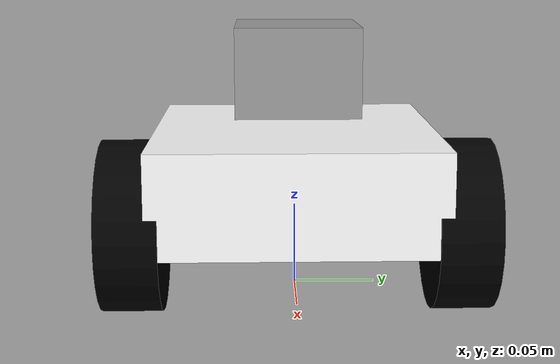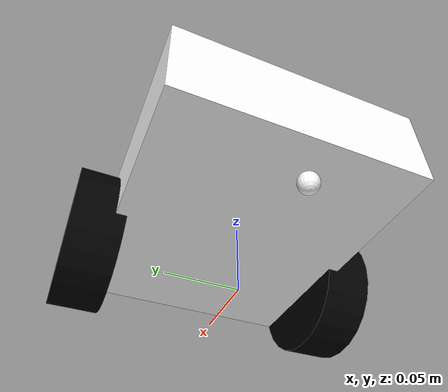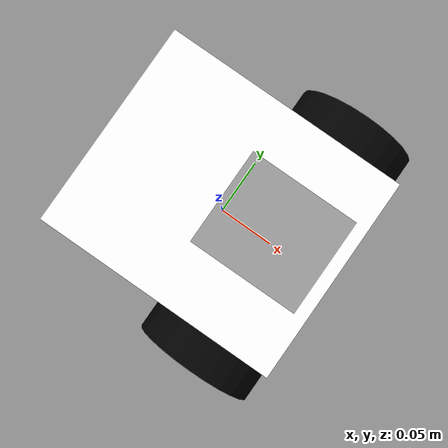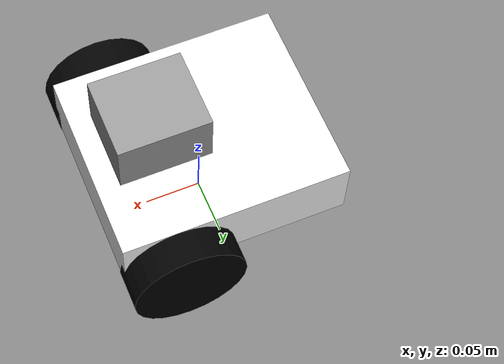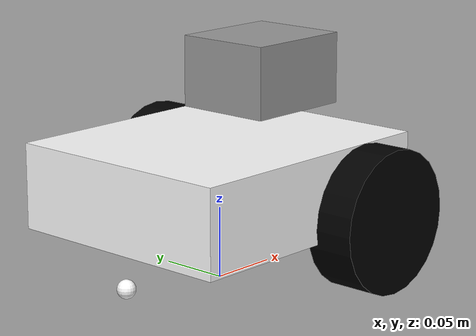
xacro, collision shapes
<?xml version="1.0"?>
<!-- Entry point for the puzzlebot URDF -->
<robot name="puzzlebot" xmlns:xacro="http://www.ros.org/wiki/xacro">
  <xacro:arg name="prefix" default="" />

  <xacro:include filename="$(find puzzlebot_description)/urdf/sensors/parameters_jetson_lidar_ed.xacro"/>
  <xacro:include filename="$(find puzzlebot_description)/urdf/base/puzzlebot_base.urdf.xacro"/>

  <xacro:include filename="$(find puzzlebot_description)/urdf/sensors/macros.xacro"/>

  <xacro:include filename="$(find puzzlebot_description)/urdf/control/puzzlebot_control.xacro"/>
  <xacro:puzzlebot_control prefix="$(arg prefix)"/> <!-- macro -->

  <xacro:include filename="$(find puzzlebot_description)/urdf/sensors/lidar.xacro"/>
  <xacro:rpi_lidar_sensor
    prefix="$(arg prefix)"
    mesh_file="${mesh_puzzlebot_lidar}"/> <!-- macro -->

</robot>

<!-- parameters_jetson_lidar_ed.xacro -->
<robot xmlns:xacro="http://www.ros.org/wiki/xacro">

    <!--General parameters-->
    <xacro:property name="PI" value="3.1415926535897931"/>

    <!--Puzzlebot parameters-->
        <!--General parameters-->
            <xacro:property name="wheel_base_distance" value="0.19"/>

    <!--Chassis-->
        <!--Chassis Inertial/Collision parameters-->
            <xacro:property name="chassis_mass" value="0.351"/>
            <xacro:property name="chassis_length" value="0.2"/>
            <xacro:property name="chassis_width" value="0.16"/>
            <xacro:property name="chassis_height" value="0.0503"/>

            <xacro:property name="chassis_inertia_pos_x" value="0.00"/>
            <xacro:property name="chassis_inertia_pos_y" value="0.0"/>
            <xacro:property name="chassis_inertia_pos_z" value="0.00"/>
            <xacro:property name="chassis_inertia_pos_r" value="0.00"/>
            <xacro:property name="chassis_inertia_pos_p" value="0.0"/>
            <xacro:property name="chassis_inertia_pos_w" value="0.0"/>

            <xacro:property name="chassis_collision_pos_x" value="0.0"/>
            <xacro:property name="chassis_collision_pos_y" value="0.0"/>
            <xacro:property name="chassis_collision_pos_z" value="0.0"/>
            <xacro:property name="chassis_collision_pos_r" value="0.0"/>
            <xacro:property name="chassis_collision_pos_p" value="0.0"/>
            <xacro:property name="chassis_collision_pos_w" value="0.0"/>

        <!--Chassis Visual parameters-->
            <xacro:property name="chassis_mesh_pos_x" value="0.0"/>
            <xacro:property name="chassis_mesh_pos_y" value="0.0"/>
            <xacro:property name="chassis_mesh_pos_z" value="0.0"/>
            <xacro:property name="chassis_mesh_pos_r" value="0.0"/>
            <xacro:property name="chassis_mesh_pos_p" value="0.0"/>
            <xacro:property name="chassis_mesh_pos_w" value="0.0"/>

        <!--Chassis Joint parameters-->
            <xacro:property name="chassis_pos_x" value="0.0"/>
            <xacro:property name="chassis_pos_y" value="0.0"/>
            <xacro:property name="chassis_pos_z" value="0.05"/>
            <xacro:property name="chassis_pos_r" value="0.0"/>
            <xacro:property name="chassis_pos_p" value="0.0"/>
            <xacro:property name="chassis_pos_w" value="0.0"/>

    <!--Caster Holder-->
        <!--Caster Holder Inertial/Collision parameters-->
            <xacro:property name="casterholder_mass" value="0.007"/>
            <xacro:property name="casterholder_length" value="0.0175"/>
            <xacro:property name="casterholder_width" value="0.023"/>
            <xacro:property name="casterholder_height" value="0.011150"/>

            <xacro:property name="casterholder_inertia_pos_x" value="0.0"/>
            <xacro:property name="casterholder_inertia_pos_y" value="0.0"/>
            <xacro:property name="casterholder_inertia_pos_z" value="0.0"/>
            <xacro:property name="casterholder_inertia_pos_r" value="0.0"/>
            <xacro:property name="casterholder_inertia_pos_p" value="0.0"/>
            <xacro:property name="casterholder_inertia_pos_w" value="0.0"/>

            <xacro:property name="casterholder_collision_pos_x" value="0.0"/>
            <xacro:property name="casterholder_collision_pos_y" value="0.0"/>
            <xacro:property name="casterholder_collision_pos_z" value="0.0"/>
            <xacro:property name="casterholder_collision_pos_r" value="0.0"/>
            <xacro:property name="casterholder_collision_pos_p" value="0.0"/>
            <xacro:property name="casterholder_collision_pos_w" value="0.0"/>

        <!--Caster Holder Visual parameters-->
            <xacro:property name="casterholder_mesh_pos_x" value="0.0"/>
            <xacro:property name="casterholder_mesh_pos_y" value="0.0"/>
            <xacro:property name="casterholder_mesh_pos_z" value="-0.012"/>
            <xacro:property name="casterholder_mesh_pos_r" value="0.0"/>
            <xacro:property name="casterholder_mesh_pos_p" value="0.0"/>
            <xacro:property name="casterholder_mesh_pos_w" value="0.0"/>

        <!--Caster Holder Joint parameters-->
            <xacro:property name="casterholder_pos_x" value="-0.095"/>
            <xacro:property name="casterholder_pos_y" value="0.0"/>
            <xacro:property name="casterholder_pos_z" value="-0.030725"/>
            <xacro:property name="casterholder_pos_r" value="0.0"/>
            <xacro:property name="casterholder_pos_p" value="0.0"/>
            <xacro:property name="casterholder_pos_w" value="0.0"/>

    <!--Caster Ball-->
        <!--Caster Ball Inertial/Collision parameters-->
            <xacro:property name="casterball_mass" value="0.009"/>
            <xacro:property name="casterball_radius" value="0.0065"/>

            <xacro:property name="casterball_inertia_pos_x" value="0.0"/>
            <xacro:property name="casterball_inertia_pos_y" value="0.0"/>
            <xacro:property name="casterball_inertia_pos_z" value="0.0"/>
            <xacro:property name="casterball_inertia_pos_r" value="0.0"/>
            <xacro:property name="casterball_inertia_pos_p" value="0.0"/>
            <xacro:property name="casterball_inertia_pos_w" value="0.0"/>

            <xacro:property name="casterball_collision_pos_x" value="0.0"/>
            <xacro:property name="casterball_collision_pos_y" value="0.0"/>
            <xacro:property name="casterball_collision_pos_z" value="0.0"/>
            <xacro:property name="casterball_collision_pos_r" value="0.0"/>
            <xacro:property name="casterball_collision_pos_p" value="0.0"/>
            <xacro:property name="casterball_collision_pos_w" value="0.0"/>

        <!--Caster Ball Visual parameters-->
            <xacro:property name="casterball_mesh_pos_x" value="0.0"/>
            <xacro:property name="casterball_mesh_pos_y" value="0.0"/>
            <xacro:property name="casterball_mesh_pos_z" value="0.0"/>
            <xacro:property name="casterball_mesh_pos_r" value="0.0"/>
            <xacro:property name="casterball_mesh_pos_p" value="0.0"/>
            <xacro:property name="casterball_mesh_pos_w" value="0.0"/>

        <!--Caster Ball Joint parameters-->
            <xacro:property name="casterball_pos_x" value="0.0"/>
            <xacro:property name="casterball_pos_y" value="0.0"/>
            <xacro:property name="casterball_pos_z" value="-0.012538"/>
            <xacro:property name="casterball_pos_r" value="0.0"/>
            <xacro:property name="casterball_pos_p" value="0.0"/>
            <xacro:property name="casterball_pos_w" value="0.0"/>

    <!--Wheel-->
        <!--Wheel Inertial/Collision parameters-->
            <xacro:property name="wheel_mass" value="0.027"/>
            <xacro:property name="wheel_height" value="0.012"/>
            <xacro:property name="wheel_radius" value="0.05"/>

            <xacro:property name="wheel_inertia_pos_x" value="0.0"/>
            <xacro:property name="wheel_inertia_pos_y" value="0.0"/>
            <xacro:property name="wheel_inertia_pos_z" value="0.0"/>
            <xacro:property name="wheel_inertia_pos_r" value="${PI/2}"/>
            <xacro:property name="wheel_inertia_pos_p" value="0.0"/>
            <xacro:property name="wheel_inertia_pos_w" value="0.0"/>

            <xacro:property name="wheel_collision_pos_x" value="0.0"/>
            <xacro:property name="wheel_collision_pos_y" value="0.0"/>
            <xacro:property name="wheel_collision_pos_z" value="0.0"/>
            <xacro:property name="wheel_collision_pos_r" value="${PI/2}"/>
            <xacro:property name="wheel_collision_pos_p" value="0.0"/>
            <xacro:property name="wheel_collision_pos_w" value="0.0"/>

        <!--Wheel Visual parameters-->
            <xacro:property name="wheel_mesh_pos_x" value="0.0"/>
            <xacro:property name="wheel_mesh_pos_y" value="0.0"/>
            <xacro:property name="wheel_mesh_pos_z" value="0.0"/>
            <xacro:property name="wheel_mesh_pos_r" value="${PI/2}"/>
            <xacro:property name="wheel_mesh_pos_p" value="0.0"/>
            <xacro:property name="wheel_mesh_pos_w" value="0.0"/>

        <!--Wheel Joint parameters-->
            <xacro:property name="wheel_pos_x" value="0.052"/>
            <xacro:property name="wheel_pos_y" value="${wheel_base_distance/2}"/>
            <xacro:property name="wheel_pos_z" value="0.0"/>
            <xacro:property name="wheel_pos_r" value="0.0"/>
            <xacro:property name="wheel_pos_p" value="0.0"/>
            <xacro:property name="wheel_pos_w" value="0.0"/>

    <!--NVIDIA Jetson-->
        <!--Jetson Inertial/Collision parameters-->
            <xacro:property name="jetson_mass" value="0.131"/>
            <xacro:property name="jetson_length" value="0.079"/>
            <xacro:property name="jetson_width" value="0.1"/>
            <xacro:property name="jetson_height" value="0.028271"/>
            <xacro:property name="jetson_offset" value="0.01"/>

            <xacro:property name="jetson_inertia_pos_x" value="0.0075"/>
            <xacro:property name="jetson_inertia_pos_y" value="0.00175"/>
            <xacro:property name="jetson_inertia_pos_z" value="${jetson_offset/2}"/>
            <xacro:property name="jetson_inertia_pos_r" value="0.0"/>
            <xacro:property name="jetson_inertia_pos_p" value="0.0"/>
            <xacro:property name="jetson_inertia_pos_w" value="0.0"/>

            <xacro:property name="jetson_collision_pos_x" value="0.0"/>
            <xacro:property name="jetson_collision_pos_y" value="0.0"/>
            <xacro:property name="jetson_collision_pos_z" value="0.0"/>
            <xacro:property name="jetson_collision_pos_r" value="0.0"/>
            <xacro:property name="jetson_collision_pos_p" value="0.0"/>
            <xacro:property name="jetson_collision_pos_w" value="0.0"/>

        <!--jetson Visual parameters-->
            <xacro:property name="jetson_mesh_pos_x" value="0.0"/>
            <xacro:property name="jetson_mesh_pos_y" value="0.0"/>
            <xacro:property name="jetson_mesh_pos_z" value="0.0"/>
            <xacro:property name="jetson_mesh_pos_r" value="0.0"/>
            <xacro:property name="jetson_mesh_pos_p" value="0.0"/>
            <xacro:property name="jetson_mesh_pos_w" value="0.0"/>

        <!--jetson Joint parameters-->
            <xacro:property name="jetson_pos_x" value="0.035"/>
            <xacro:property name="jetson_pos_y" value="-0.003"/>
            <xacro:property name="jetson_pos_z" value="${chassis_height/2}"/>
            <xacro:property name="jetson_pos_r" value="0.0"/>
            <xacro:property name="jetson_pos_p" value="0.0"/>
            <xacro:property name="jetson_pos_w" value="0.0"/>

    <!--Meshes -->
        <xacro:property name="mesh_puzzlebot_chassis"  value="file://$(find puzzlebot_description)/meshes/Robot_lidar_base/Puzzlebot_Jetson_Lidar_Edition_Base.stl" />
        <xacro:property name="mesh_puzzlebot_wheel"  value="file://$(find puzzlebot_description)/meshes/Wheels/Puzzlebot_Wheel.stl" />
        <xacro:property name="mesh_puzzlebot_caster"  value="file://$(find puzzlebot_description)/meshes/Components/Puzzlebot_Caster_Wheel.stl" />
        <xacro:property name="mesh_puzzlebot_lidar"  value="file://$(find puzzlebot_description)/meshes/Sensor/RPLidar.stl" />

</robot>

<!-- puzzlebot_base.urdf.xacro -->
<robot name="puzzlebot" xmlns:xacro="http://www.ros.org/wiki/xacro">

  <!-- Base Footprint Link -->
  <link name="base_footprint"/>

  <!-- Base Link (center of the robot) -->
  <link name="base_link">
    <inertial>
      <mass value="1.0"/>
      <inertia ixx="0.1" ixy="0.0" ixz="0.0" iyy="0.1" iyz="0.0" izz="0.1"/>
    </inertial>
    <visual>
      <origin xyz="0.0 0.0 0.0" rpy="0.0 0.0 0.0"/>
      <geometry>
        <mesh filename="${mesh_puzzlebot_chassis}" scale="1 1 1"/>
      </geometry>
      <material name="white">
        <color rgba="1.0 1.0 1.0 1.0"/>
      </material>
    </visual>
    <collision>
      <origin xyz="0.0 0.0 0.02" rpy="0.0 0.0 0.0"/>
      <geometry>
        <box size="0.20 0.17 0.06"/>
      </geometry>
    </collision>
  </link>

  <!-- Right Wheel Link -->
  <link name="wheel_r_link">
    <inertial>
      <mass value="0.3"/>
      <inertia ixx="0.01" ixy="0.0" ixz="0.0" iyy="0.01" iyz="0.0" izz="0.01"/>
    </inertial>
    <visual>
      <origin xyz="0.0 0.0 0.0" rpy="1.5708 0.0 0.0"/>
      <geometry>
        <mesh filename="${mesh_puzzlebot_wheel}" scale="1 1 1"/>
      </geometry>
      <material name="black">
        <color rgba="0.0 0.0 0.0 1.0"/>
      </material>
    </visual>
    <collision>
      <origin xyz="0.0 0.0 0.0" rpy="1.5708 0.0 0.0"/>
      <geometry>
        <cylinder radius="0.05" length="0.035"/>
      </geometry>
    </collision>
  </link>

  <!-- Left Wheel Link -->
  <link name="wheel_l_link">
    <inertial>
      <mass value="0.3"/>
      <inertia ixx="0.01" ixy="0.0" ixz="0.0" iyy="0.01" iyz="0.0" izz="0.01"/>
    </inertial>
    <visual>
      <origin xyz="0.0 0.0 0.0" rpy="1.5708 0.0 0.0"/>

      <geometry>
        <mesh filename="${mesh_puzzlebot_wheel}" scale="1 1 1"/>
      </geometry>
      <material name="black">
        <color rgba="0.0 0.0 0.0 1.0"/>
      </material>
    </visual>
    <collision>
      <origin xyz="0.0 0.0 0.0" rpy="1.5708 0.0 0.0"/>
      <geometry>
        <cylinder radius="0.05" length="0.035"/>
      </geometry>
    </collision>
  </link>

  <!-- Caster Wheel Link -->
  <link name="caster_link">
    <inertial>
      <mass value="0.1"/>
      <inertia ixx="0.001" ixy="0.0" ixz="0.0" iyy="0.001" iyz="0.0" izz="0.001"/>
    </inertial>
    <visual>
      <origin xyz="0.0 0.0 0.0" rpy="0.0 0.0 0.0"/>
      <geometry>
        <mesh filename="${mesh_puzzlebot_caster}" scale="1 1 1"/>
      </geometry>
      <material name="black">
        <color rgba="1.0 1.0 1.0 1.0"/>
      </material>
    </visual>
    <collision>
      <origin xyz="0.0 0.0 0.0065" rpy="0.0 0.0 0.0"/>
      <geometry>
        <sphere radius="0.0065"/>
      </geometry>
    </collision>
  </link>

  <!-- JOINTS -->

  <!-- Fixed joint between base_footprint and base_link (z-axis offset) -->
  <joint name="base_link_joint" type="fixed">
    <origin xyz="0.0 0.0 0.05" rpy="0.0 0.0 0.0"/>
    <parent link="base_footprint"/>
    <child link="base_link"/>
  </joint>

  <!-- Right Wheel Joint -->
  <joint name="wheel_r_joint" type="continuous">
    <origin xyz="0.052 -0.095 0.0" rpy="0.0 0.0 0.0"/>
    <parent link="base_link"/>
    <child link="wheel_r_link"/>
    <axis xyz="0.0 1.0 0.0"/>
  </joint>

  <!-- Left Wheel Joint -->
  <joint name="wheel_l_joint" type="continuous">
    <origin xyz="0.052 0.095 0.0" rpy="0.0 0.0 0.0"/>
    <parent link="base_link"/>
    <child link="wheel_l_link"/>
    <axis xyz="0.0 1.0 0.0"/>
  </joint>

  <!-- Caster Joint -->
  <joint name="caster_joint" type="fixed">
    <origin xyz="-0.09 0 -0.043" rpy="0.0 0.0 0.0"/>
    <parent link="base_link"/>
    <child link="caster_link"/>
  </joint>

</robot>

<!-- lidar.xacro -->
<robot xmlns:xacro="http://www.ros.org/wiki/xacro">

  <xacro:property name="M_PI" value="3.1415926535897931" />

  <xacro:macro name="rpi_lidar_sensor" params="
    prefix:=''
    frame_name:='laser_frame'
    parent:='base_link'
    mesh_file:='package://puzzlebot_description/meshes/Sensor/RPLidar.stl'

    lidar_base_mass:='0.1755'
    lidar_base_length:='0.08'
    lidar_base_width:='0.07'
    lidar_base_height:='0.05'

    lidar_base_inertia_pos_x:='0.0'
    lidar_base_inertia_pos_y:='0.0'
    lidar_base_inertia_pos_z:='0.021'
    lidar_base_inertia_pos_r:='0.0'
    lidar_base_inertia_pos_p:='0.0'
    lidar_base_inertia_pos_w:='0.0'

    lidar_base_collision_pos_x:='0.0'
    lidar_base_collision_pos_y:='0.0'
    lidar_base_collision_pos_z:='0.021'
    lidar_base_collision_pos_r:='0.0'
    lidar_base_collision_pos_p:='0.0'
    lidar_base_collision_pos_w:='0.0'

    lidar_base_mesh_pos_x:='0.0'
    lidar_base_mesh_pos_y:='0.0'
    lidar_base_mesh_pos_z:='0.025'
    lidar_base_mesh_pos_r:='0.0'
    lidar_base_mesh_pos_p:='0.0'
    lidar_base_mesh_pos_w:='0.0'

    lidar_base_pos_x:='0.0425'
    lidar_base_pos_y:='0.00'
    lidar_base_pos_z:='0.070'
    lidar_base_pos_r:='0.0'
    lidar_base_pos_p:='0.0'
    lidar_base_pos_w:='0.0'

    lidar_pos_x:='0.0'
    lidar_pos_y:='0.00'
    lidar_pos_z:='0.035'
    lidar_pos_r:='0.0'
    lidar_pos_p:='0.0'
    lidar_pos_w:='0.0'

    update_rate:='10'
    ray_count:='360'
    min_angle:='-3.14159'
    max_angle:='3.14159'
    min_range:='0.15'
    max_range:='12.0'
    range_resolution:='0.017'
    topic_name:='scan'
    always_on:='true'
    visualize:='false'
    ">

    <link name="${prefix}lidar_base_link">
        <visual>
            <origin xyz="${lidar_base_mesh_pos_x} ${lidar_base_mesh_pos_y} ${lidar_base_mesh_pos_z}" rpy="${lidar_base_mesh_pos_r} ${lidar_base_mesh_pos_p} ${lidar_base_mesh_pos_w}"/>
            <geometry>
                <mesh filename="${mesh_file}"/>
            </geometry>
            <material name="grey"/>
        </visual>

        <collision>
            <origin xyz="${lidar_base_collision_pos_x} ${lidar_base_collision_pos_y} ${lidar_base_collision_pos_z}" rpy="${lidar_base_collision_pos_r} ${lidar_base_collision_pos_p} ${lidar_base_collision_pos_w}"/>
            <geometry>
                <box size="${lidar_base_length} ${lidar_base_width} ${lidar_base_height}"/>
            </geometry>
        </collision>

        <inertial>
            <origin xyz="${lidar_base_inertia_pos_x} ${lidar_base_inertia_pos_y} ${lidar_base_inertia_pos_z}" rpy="${lidar_base_inertia_pos_r} ${lidar_base_inertia_pos_p} ${lidar_base_inertia_pos_w}"/>
            <mass value="${lidar_base_mass}"/>
            <xacro:box_inertia mass="${lidar_base_mass}" x="${lidar_base_length}" y="${lidar_base_width}" z="${lidar_base_height}" />
        </inertial>
    </link>

    <link name="${prefix}laser_frame">

        <visual>
            <origin xyz="0 0 0" rpy="0 0 0"/>
            <geometry>
                <box size="0.005 0.005 0.005"/> <!-- Box shape for lidar -->
            </geometry>
            <material name="grey"/>
        </visual>

        <collision>
            <origin xyz="0 0 0" rpy="0 0 0"/>
            <geometry>
                <box size="0.005 0.005 0.005"/>
            </geometry>
        </collision>

        <inertial>
            <origin xyz="0 0 0" rpy="0 0 0"/>
            <mass value="1e-5"/>
            <xacro:box_inertia mass="1e-5" x="0.005" y="0.005" z="0.005" />
        </inertial>
    </link>

    <joint name="${prefix}lidar_base_joint" type="fixed">
        <parent link="${prefix}${parent}"/>
        <child link="${prefix}lidar_base_link"/>
        <origin xyz="${lidar_base_pos_x} ${lidar_base_pos_y} ${lidar_base_pos_z}" rpy="${lidar_base_pos_r} ${lidar_base_pos_p} ${lidar_base_pos_w}"/>
    </joint>

    <joint name="${prefix}lidar_joint" type="fixed">
        <parent link="${prefix}lidar_base_link"/>
        <child link="${prefix}laser_frame"/>
        <origin xyz="${lidar_pos_x} ${lidar_pos_y} ${lidar_pos_z}" rpy="${lidar_pos_r} ${lidar_pos_p} ${lidar_pos_w}"/>
    </joint>

    <gazebo reference="${prefix}laser_frame">
        <sensor name="${prefix}lidar_sensor" type="gpu_lidar">
            <topic>${prefix}${topic_name}</topic>
            <gz_frame_id>${prefix}laser_frame</gz_frame_id>
            <pose> 0 0 0 0 0 0 </pose>
            <update_rate>${update_rate}</update_rate>
            <always_on>${always_on}</always_on>
            <visualize>${visualize}</visualize>
            <ray>
            <scan>
                <horizontal>
                <samples>${ray_count}</samples>
                <resolution>1</resolution>
                <min_angle>${min_angle}</min_angle>
                <max_angle>${max_angle}</max_angle>
                </horizontal>
                <vertical>
                <samples>1</samples>
                <resolution>0.01</resolution>
                <min_angle>0</min_angle>
                <max_angle>0</max_angle>
                </vertical>
            </scan>
            <range>
                <min>${min_range}</min>
                <max>${max_range}</max>
                <resolution>${range_resolution}</resolution>
            </range>
            </ray>
        </sensor>
    </gazebo>

    </xacro:macro>
</robot>
